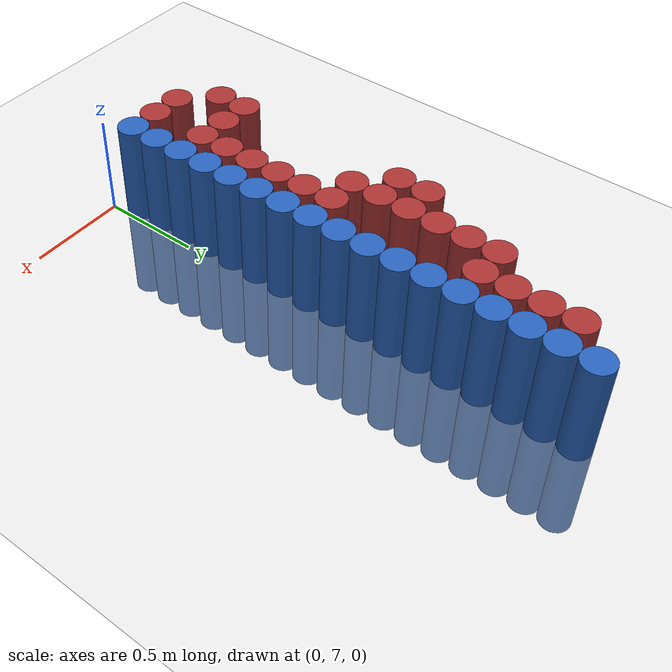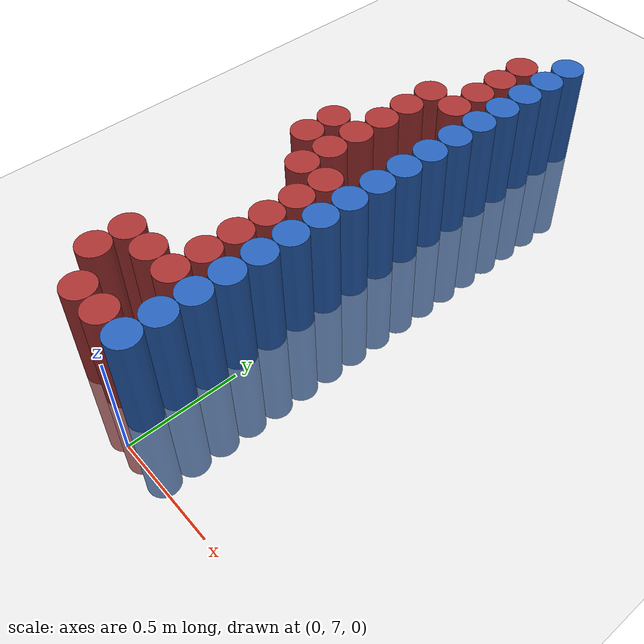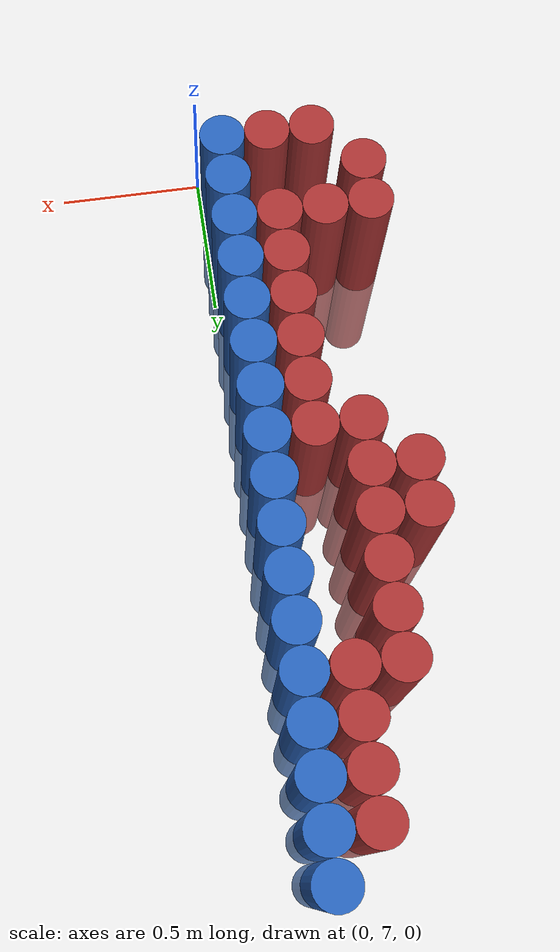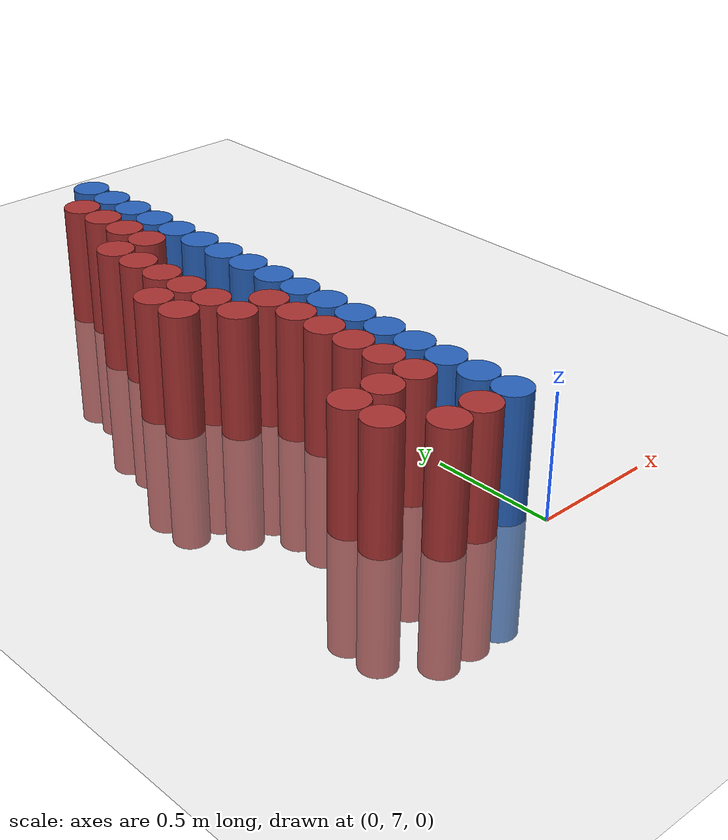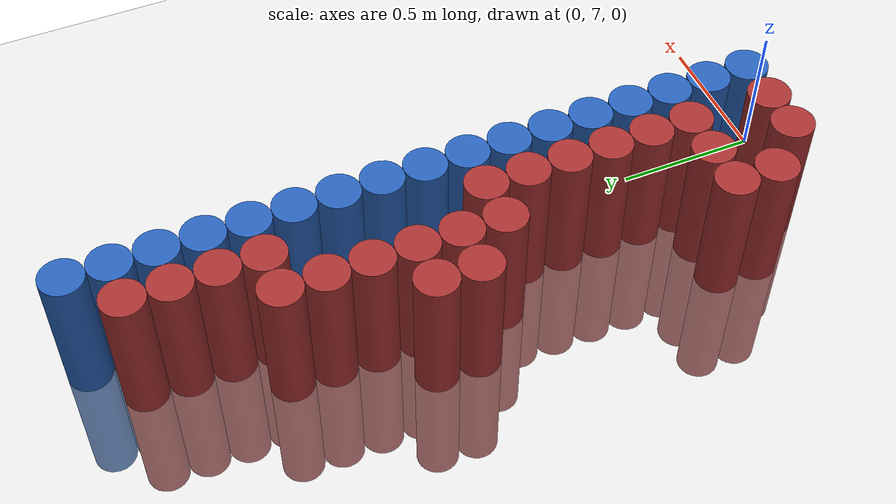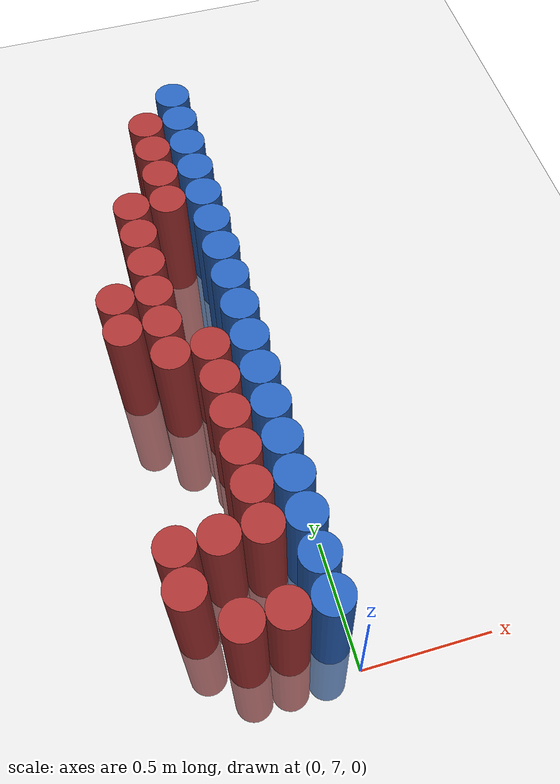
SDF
<sdf version="1.6">
 <world name="default">
  <model name="ground_plane">
   <static>1</static>
   <link name="link">
    <collision name="collision">
     <geometry><plane><normal>0 0 1</normal><size>100 100</size></plane></geometry>
     <surface><friction><ode><mu>100</mu><mu2>50</mu2></ode></friction></surface>
    </collision>
    <visual name="visual">
     <cast_shadows>0</cast_shadows>
     <geometry><plane><normal>0 0 1</normal><size>100 100</size></plane></geometry>
     <material>
      <script><uri>file://media/materials/scripts/gazebo.material</uri><name>Gazebo/Grey</name></script>
     </material>
    </visual>
   </link>
  </model>
  <model name="unit_cylinder_297">
   <static>1</static>
   <pose>-0.525000 7.275000 0.000000 0.000000 0.000000 0.000000</pose>
   <link name="link">
    <inertial>
     <mass>1</mass>
     <inertia><ixx>0.145833</ixx><ixy>0</ixy><ixz>0</ixz><iyy>0.145833</iyy><iyz>0</iyz><izz>0.125</izz></inertia>
    </inertial>
    <collision name="collision">
     <geometry><cylinder><radius>0.075000</radius><length>1</length></cylinder></geometry>
    </collision>
    <visual name="visual">
     <geometry><cylinder><radius>0.075000</radius><length>1</length></cylinder></geometry>
     <material>
      <ambient>0.648000 0.192000 0.192000 1</ambient>
      <diffuse>0.648000 0.192000 0.192000 1</diffuse>
     </material>
     <material>
      <script><name>Gazebo/Grey</name><uri>file://media/materials/scripts/gazebo.material</uri></script>
     </material>
    </visual>
    <sensor name="sensor_contact" type="contact"><contact><collision>collision</collision></contact></sensor>
   </link>
   <plugin filename="gz-sim-touchplugin-system" name="gz::sim::systems::TouchPlugin">
    <target>robot</target>
    <namespace>robot</namespace>
    <time>0.001</time>
    <enabled>true</enabled>
   </plugin>
  </model>
  <model name="unit_cylinder_298">
   <static>1</static>
   <pose>-0.525000 7.425000 0.000000 0.000000 0.000000 0.000000</pose>
   <link name="link">
    <inertial>
     <mass>1</mass>
     <inertia><ixx>0.145833</ixx><ixy>0</ixy><ixz>0</ixz><iyy>0.145833</iyy><iyz>0</iyz><izz>0.125</izz></inertia>
    </inertial>
    <collision name="collision">
     <geometry><cylinder><radius>0.075000</radius><length>1</length></cylinder></geometry>
    </collision>
    <visual name="visual">
     <geometry><cylinder><radius>0.075000</radius><length>1</length></cylinder></geometry>
     <material>
      <ambient>0.648000 0.192000 0.192000 1</ambient>
      <diffuse>0.648000 0.192000 0.192000 1</diffuse>
     </material>
     <material>
      <script><name>Gazebo/Grey</name><uri>file://media/materials/scripts/gazebo.material</uri></script>
     </material>
    </visual>
    <sensor name="sensor_contact" type="contact"><contact><collision>collision</collision></contact></sensor>
   </link>
   <plugin filename="gz-sim-touchplugin-system" name="gz::sim::systems::TouchPlugin">
    <target>robot</target>
    <namespace>robot</namespace>
    <time>0.001</time>
    <enabled>true</enabled>
   </plugin>
  </model>
  <model name="unit_cylinder_299">
   <static>1</static>
   <pose>-0.525000 8.325000 0.000000 0.000000 0.000000 0.000000</pose>
   <link name="link">
    <inertial>
     <mass>1</mass>
     <inertia><ixx>0.145833</ixx><ixy>0</ixy><ixz>0</ixz><iyy>0.145833</iyy><iyz>0</iyz><izz>0.125</izz></inertia>
    </inertial>
    <collision name="collision">
     <geometry><cylinder><radius>0.075000</radius><length>1</length></cylinder></geometry>
    </collision>
    <visual name="visual">
     <geometry><cylinder><radius>0.075000</radius><length>1</length></cylinder></geometry>
     <material>
      <ambient>0.648000 0.192000 0.192000 1</ambient>
      <diffuse>0.648000 0.192000 0.192000 1</diffuse>
     </material>
     <material>
      <script><name>Gazebo/Grey</name><uri>file://media/materials/scripts/gazebo.material</uri></script>
     </material>
    </visual>
    <sensor name="sensor_contact" type="contact"><contact><collision>collision</collision></contact></sensor>
   </link>
   <plugin filename="gz-sim-touchplugin-system" name="gz::sim::systems::TouchPlugin">
    <target>robot</target>
    <namespace>robot</namespace>
    <time>0.001</time>
    <enabled>true</enabled>
   </plugin>
  </model>
  <model name="unit_cylinder_300">
   <static>1</static>
   <pose>-0.525000 8.475000 0.000000 0.000000 0.000000 0.000000</pose>
   <link name="link">
    <inertial>
     <mass>1</mass>
     <inertia><ixx>0.145833</ixx><ixy>0</ixy><ixz>0</ixz><iyy>0.145833</iyy><iyz>0</iyz><izz>0.125</izz></inertia>
    </inertial>
    <collision name="collision">
     <geometry><cylinder><radius>0.075000</radius><length>1</length></cylinder></geometry>
    </collision>
    <visual name="visual">
     <geometry><cylinder><radius>0.075000</radius><length>1</length></cylinder></geometry>
     <material>
      <ambient>0.648000 0.192000 0.192000 1</ambient>
      <diffuse>0.648000 0.192000 0.192000 1</diffuse>
     </material>
     <material>
      <script><name>Gazebo/Grey</name><uri>file://media/materials/scripts/gazebo.material</uri></script>
     </material>
    </visual>
    <sensor name="sensor_contact" type="contact"><contact><collision>collision</collision></contact></sensor>
   </link>
   <plugin filename="gz-sim-touchplugin-system" name="gz::sim::systems::TouchPlugin">
    <target>robot</target>
    <namespace>robot</namespace>
    <time>0.001</time>
    <enabled>true</enabled>
   </plugin>
  </model>
  <model name="unit_cylinder_303">
   <static>1</static>
   <pose>-0.375000 7.125000 0.000000 0.000000 0.000000 0.000000</pose>
   <link name="link">
    <inertial>
     <mass>1</mass>
     <inertia><ixx>0.145833</ixx><ixy>0</ixy><ixz>0</ixz><iyy>0.145833</iyy><iyz>0</iyz><izz>0.125</izz></inertia>
    </inertial>
    <collision name="collision">
     <geometry><cylinder><radius>0.075000</radius><length>1</length></cylinder></geometry>
    </collision>
    <visual name="visual">
     <geometry><cylinder><radius>0.075000</radius><length>1</length></cylinder></geometry>
     <material>
      <ambient>0.648000 0.192000 0.192000 1</ambient>
      <diffuse>0.648000 0.192000 0.192000 1</diffuse>
     </material>
     <material>
      <script><name>Gazebo/Grey</name><uri>file://media/materials/scripts/gazebo.material</uri></script>
     </material>
    </visual>
    <sensor name="sensor_contact" type="contact"><contact><collision>collision</collision></contact></sensor>
   </link>
   <plugin filename="gz-sim-touchplugin-system" name="gz::sim::systems::TouchPlugin">
    <target>robot</target>
    <namespace>robot</namespace>
    <time>0.001</time>
    <enabled>true</enabled>
   </plugin>
  </model>
  <model name="unit_cylinder_304">
   <static>1</static>
   <pose>-0.375000 7.425000 0.000000 0.000000 0.000000 0.000000</pose>
   <link name="link">
    <inertial>
     <mass>1</mass>
     <inertia><ixx>0.145833</ixx><ixy>0</ixy><ixz>0</ixz><iyy>0.145833</iyy><iyz>0</iyz><izz>0.125</izz></inertia>
    </inertial>
    <collision name="collision">
     <geometry><cylinder><radius>0.075000</radius><length>1</length></cylinder></geometry>
    </collision>
    <visual name="visual">
     <geometry><cylinder><radius>0.075000</radius><length>1</length></cylinder></geometry>
     <material>
      <ambient>0.648000 0.192000 0.192000 1</ambient>
      <diffuse>0.648000 0.192000 0.192000 1</diffuse>
     </material>
     <material>
      <script><name>Gazebo/Grey</name><uri>file://media/materials/scripts/gazebo.material</uri></script>
     </material>
    </visual>
    <sensor name="sensor_contact" type="contact"><contact><collision>collision</collision></contact></sensor>
   </link>
   <plugin filename="gz-sim-touchplugin-system" name="gz::sim::systems::TouchPlugin">
    <target>robot</target>
    <namespace>robot</namespace>
    <time>0.001</time>
    <enabled>true</enabled>
   </plugin>
  </model>
  <model name="unit_cylinder_305">
   <static>1</static>
   <pose>-0.375000 8.175000 0.000000 0.000000 0.000000 0.000000</pose>
   <link name="link">
    <inertial>
     <mass>1</mass>
     <inertia><ixx>0.145833</ixx><ixy>0</ixy><ixz>0</ixz><iyy>0.145833</iyy><iyz>0</iyz><izz>0.125</izz></inertia>
    </inertial>
    <collision name="collision">
     <geometry><cylinder><radius>0.075000</radius><length>1</length></cylinder></geometry>
    </collision>
    <visual name="visual">
     <geometry><cylinder><radius>0.075000</radius><length>1</length></cylinder></geometry>
     <material>
      <ambient>0.648000 0.192000 0.192000 1</ambient>
      <diffuse>0.648000 0.192000 0.192000 1</diffuse>
     </material>
     <material>
      <script><name>Gazebo/Grey</name><uri>file://media/materials/scripts/gazebo.material</uri></script>
     </material>
    </visual>
    <sensor name="sensor_contact" type="contact"><contact><collision>collision</collision></contact></sensor>
   </link>
   <plugin filename="gz-sim-touchplugin-system" name="gz::sim::systems::TouchPlugin">
    <target>robot</target>
    <namespace>robot</namespace>
    <time>0.001</time>
    <enabled>true</enabled>
   </plugin>
  </model>
  <model name="unit_cylinder_306">
   <static>1</static>
   <pose>-0.375000 8.325000 0.000000 0.000000 0.000000 0.000000</pose>
   <link name="link">
    <inertial>
     <mass>1</mass>
     <inertia><ixx>0.145833</ixx><ixy>0</ixy><ixz>0</ixz><iyy>0.145833</iyy><iyz>0</iyz><izz>0.125</izz></inertia>
    </inertial>
    <collision name="collision">
     <geometry><cylinder><radius>0.075000</radius><length>1</length></cylinder></geometry>
    </collision>
    <visual name="visual">
     <geometry><cylinder><radius>0.075000</radius><length>1</length></cylinder></geometry>
     <material>
      <ambient>0.648000 0.192000 0.192000 1</ambient>
      <diffuse>0.648000 0.192000 0.192000 1</diffuse>
     </material>
     <material>
      <script><name>Gazebo/Grey</name><uri>file://media/materials/scripts/gazebo.material</uri></script>
     </material>
    </visual>
    <sensor name="sensor_contact" type="contact"><contact><collision>collision</collision></contact></sensor>
   </link>
   <plugin filename="gz-sim-touchplugin-system" name="gz::sim::systems::TouchPlugin">
    <target>robot</target>
    <namespace>robot</namespace>
    <time>0.001</time>
    <enabled>true</enabled>
   </plugin>
  </model>
  <model name="unit_cylinder_307">
   <static>1</static>
   <pose>-0.375000 8.475000 0.000000 0.000000 0.000000 0.000000</pose>
   <link name="link">
    <inertial>
     <mass>1</mass>
     <inertia><ixx>0.145833</ixx><ixy>0</ixy><ixz>0</ixz><iyy>0.145833</iyy><iyz>0</iyz><izz>0.125</izz></inertia>
    </inertial>
    <collision name="collision">
     <geometry><cylinder><radius>0.075000</radius><length>1</length></cylinder></geometry>
    </collision>
    <visual name="visual">
     <geometry><cylinder><radius>0.075000</radius><length>1</length></cylinder></geometry>
     <material>
      <ambient>0.648000 0.192000 0.192000 1</ambient>
      <diffuse>0.648000 0.192000 0.192000 1</diffuse>
     </material>
     <material>
      <script><name>Gazebo/Grey</name><uri>file://media/materials/scripts/gazebo.material</uri></script>
     </material>
    </visual>
    <sensor name="sensor_contact" type="contact"><contact><collision>collision</collision></contact></sensor>
   </link>
   <plugin filename="gz-sim-touchplugin-system" name="gz::sim::systems::TouchPlugin">
    <target>robot</target>
    <namespace>robot</namespace>
    <time>0.001</time>
    <enabled>true</enabled>
   </plugin>
  </model>
  <model name="unit_cylinder_308">
   <static>1</static>
   <pose>-0.375000 8.625000 0.000000 0.000000 0.000000 0.000000</pose>
   <link name="link">
    <inertial>
     <mass>1</mass>
     <inertia><ixx>0.145833</ixx><ixy>0</ixy><ixz>0</ixz><iyy>0.145833</iyy><iyz>0</iyz><izz>0.125</izz></inertia>
    </inertial>
    <collision name="collision">
     <geometry><cylinder><radius>0.075000</radius><length>1</length></cylinder></geometry>
    </collision>
    <visual name="visual">
     <geometry><cylinder><radius>0.075000</radius><length>1</length></cylinder></geometry>
     <material>
      <ambient>0.648000 0.192000 0.192000 1</ambient>
      <diffuse>0.648000 0.192000 0.192000 1</diffuse>
     </material>
     <material>
      <script><name>Gazebo/Grey</name><uri>file://media/materials/scripts/gazebo.material</uri></script>
     </material>
    </visual>
    <sensor name="sensor_contact" type="contact"><contact><collision>collision</collision></contact></sensor>
   </link>
   <plugin filename="gz-sim-touchplugin-system" name="gz::sim::systems::TouchPlugin">
    <target>robot</target>
    <namespace>robot</namespace>
    <time>0.001</time>
    <enabled>true</enabled>
   </plugin>
  </model>
  <model name="unit_cylinder_309">
   <static>1</static>
   <pose>-0.375000 8.775000 0.000000 0.000000 0.000000 0.000000</pose>
   <link name="link">
    <inertial>
     <mass>1</mass>
     <inertia><ixx>0.145833</ixx><ixy>0</ixy><ixz>0</ixz><iyy>0.145833</iyy><iyz>0</iyz><izz>0.125</izz></inertia>
    </inertial>
    <collision name="collision">
     <geometry><cylinder><radius>0.075000</radius><length>1</length></cylinder></geometry>
    </collision>
    <visual name="visual">
     <geometry><cylinder><radius>0.075000</radius><length>1</length></cylinder></geometry>
     <material>
      <ambient>0.648000 0.192000 0.192000 1</ambient>
      <diffuse>0.648000 0.192000 0.192000 1</diffuse>
     </material>
     <material>
      <script><name>Gazebo/Grey</name><uri>file://media/materials/scripts/gazebo.material</uri></script>
     </material>
    </visual>
    <sensor name="sensor_contact" type="contact"><contact><collision>collision</collision></contact></sensor>
   </link>
   <plugin filename="gz-sim-touchplugin-system" name="gz::sim::systems::TouchPlugin">
    <target>robot</target>
    <namespace>robot</namespace>
    <time>0.001</time>
    <enabled>true</enabled>
   </plugin>
  </model>
  <model name="unit_cylinder_310">
   <static>1</static>
   <pose>-0.375000 8.925000 0.000000 0.000000 0.000000 0.000000</pose>
   <link name="link">
    <inertial>
     <mass>1</mass>
     <inertia><ixx>0.145833</ixx><ixy>0</ixy><ixz>0</ixz><iyy>0.145833</iyy><iyz>0</iyz><izz>0.125</izz></inertia>
    </inertial>
    <collision name="collision">
     <geometry><cylinder><radius>0.075000</radius><length>1</length></cylinder></geometry>
    </collision>
    <visual name="visual">
     <geometry><cylinder><radius>0.075000</radius><length>1</length></cylinder></geometry>
     <material>
      <ambient>0.648000 0.192000 0.192000 1</ambient>
      <diffuse>0.648000 0.192000 0.192000 1</diffuse>
     </material>
     <material>
      <script><name>Gazebo/Grey</name><uri>file://media/materials/scripts/gazebo.material</uri></script>
     </material>
    </visual>
    <sensor name="sensor_contact" type="contact"><contact><collision>collision</collision></contact></sensor>
   </link>
   <plugin filename="gz-sim-touchplugin-system" name="gz::sim::systems::TouchPlugin">
    <target>robot</target>
    <namespace>robot</namespace>
    <time>0.001</time>
    <enabled>true</enabled>
   </plugin>
  </model>
  <model name="unit_cylinder_316">
   <static>1</static>
   <pose>-0.225000 7.125000 0.000000 0.000000 0.000000 0.000000</pose>
   <link name="link">
    <inertial>
     <mass>1</mass>
     <inertia><ixx>0.145833</ixx><ixy>0</ixy><ixz>0</ixz><iyy>0.145833</iyy><iyz>0</iyz><izz>0.125</izz></inertia>
    </inertial>
    <collision name="collision">
     <geometry><cylinder><radius>0.075000</radius><length>1</length></cylinder></geometry>
    </collision>
    <visual name="visual">
     <geometry><cylinder><radius>0.075000</radius><length>1</length></cylinder></geometry>
     <material>
      <ambient>0.648000 0.192000 0.192000 1</ambient>
      <diffuse>0.648000 0.192000 0.192000 1</diffuse>
     </material>
     <material>
      <script><name>Gazebo/Grey</name><uri>file://media/materials/scripts/gazebo.material</uri></script>
     </material>
    </visual>
    <sensor name="sensor_contact" type="contact"><contact><collision>collision</collision></contact></sensor>
   </link>
   <plugin filename="gz-sim-touchplugin-system" name="gz::sim::systems::TouchPlugin">
    <target>robot</target>
    <namespace>robot</namespace>
    <time>0.001</time>
    <enabled>true</enabled>
   </plugin>
  </model>
  <model name="unit_cylinder_317">
   <static>1</static>
   <pose>-0.225000 7.425000 0.000000 0.000000 0.000000 0.000000</pose>
   <link name="link">
    <inertial>
     <mass>1</mass>
     <inertia><ixx>0.145833</ixx><ixy>0</ixy><ixz>0</ixz><iyy>0.145833</iyy><iyz>0</iyz><izz>0.125</izz></inertia>
    </inertial>
    <collision name="collision">
     <geometry><cylinder><radius>0.075000</radius><length>1</length></cylinder></geometry>
    </collision>
    <visual name="visual">
     <geometry><cylinder><radius>0.075000</radius><length>1</length></cylinder></geometry>
     <material>
      <ambient>0.648000 0.192000 0.192000 1</ambient>
      <diffuse>0.648000 0.192000 0.192000 1</diffuse>
     </material>
     <material>
      <script><name>Gazebo/Grey</name><uri>file://media/materials/scripts/gazebo.material</uri></script>
     </material>
    </visual>
    <sensor name="sensor_contact" type="contact"><contact><collision>collision</collision></contact></sensor>
   </link>
   <plugin filename="gz-sim-touchplugin-system" name="gz::sim::systems::TouchPlugin">
    <target>robot</target>
    <namespace>robot</namespace>
    <time>0.001</time>
    <enabled>true</enabled>
   </plugin>
  </model>
  <model name="unit_cylinder_318">
   <static>1</static>
   <pose>-0.225000 7.575000 0.000000 0.000000 0.000000 0.000000</pose>
   <link name="link">
    <inertial>
     <mass>1</mass>
     <inertia><ixx>0.145833</ixx><ixy>0</ixy><ixz>0</ixz><iyy>0.145833</iyy><iyz>0</iyz><izz>0.125</izz></inertia>
    </inertial>
    <collision name="collision">
     <geometry><cylinder><radius>0.075000</radius><length>1</length></cylinder></geometry>
    </collision>
    <visual name="visual">
     <geometry><cylinder><radius>0.075000</radius><length>1</length></cylinder></geometry>
     <material>
      <ambient>0.648000 0.192000 0.192000 1</ambient>
      <diffuse>0.648000 0.192000 0.192000 1</diffuse>
     </material>
     <material>
      <script><name>Gazebo/Grey</name><uri>file://media/materials/scripts/gazebo.material</uri></script>
     </material>
    </visual>
    <sensor name="sensor_contact" type="contact"><contact><collision>collision</collision></contact></sensor>
   </link>
   <plugin filename="gz-sim-touchplugin-system" name="gz::sim::systems::TouchPlugin">
    <target>robot</target>
    <namespace>robot</namespace>
    <time>0.001</time>
    <enabled>true</enabled>
   </plugin>
  </model>
  <model name="unit_cylinder_319">
   <static>1</static>
   <pose>-0.225000 7.725000 0.000000 0.000000 0.000000 0.000000</pose>
   <link name="link">
    <inertial>
     <mass>1</mass>
     <inertia><ixx>0.145833</ixx><ixy>0</ixy><ixz>0</ixz><iyy>0.145833</iyy><iyz>0</iyz><izz>0.125</izz></inertia>
    </inertial>
    <collision name="collision">
     <geometry><cylinder><radius>0.075000</radius><length>1</length></cylinder></geometry>
    </collision>
    <visual name="visual">
     <geometry><cylinder><radius>0.075000</radius><length>1</length></cylinder></geometry>
     <material>
      <ambient>0.648000 0.192000 0.192000 1</ambient>
      <diffuse>0.648000 0.192000 0.192000 1</diffuse>
     </material>
     <material>
      <script><name>Gazebo/Grey</name><uri>file://media/materials/scripts/gazebo.material</uri></script>
     </material>
    </visual>
    <sensor name="sensor_contact" type="contact"><contact><collision>collision</collision></contact></sensor>
   </link>
   <plugin filename="gz-sim-touchplugin-system" name="gz::sim::systems::TouchPlugin">
    <target>robot</target>
    <namespace>robot</namespace>
    <time>0.001</time>
    <enabled>true</enabled>
   </plugin>
  </model>
  <model name="unit_cylinder_320">
   <static>1</static>
   <pose>-0.225000 7.875000 0.000000 0.000000 0.000000 0.000000</pose>
   <link name="link">
    <inertial>
     <mass>1</mass>
     <inertia><ixx>0.145833</ixx><ixy>0</ixy><ixz>0</ixz><iyy>0.145833</iyy><iyz>0</iyz><izz>0.125</izz></inertia>
    </inertial>
    <collision name="collision">
     <geometry><cylinder><radius>0.075000</radius><length>1</length></cylinder></geometry>
    </collision>
    <visual name="visual">
     <geometry><cylinder><radius>0.075000</radius><length>1</length></cylinder></geometry>
     <material>
      <ambient>0.648000 0.192000 0.192000 1</ambient>
      <diffuse>0.648000 0.192000 0.192000 1</diffuse>
     </material>
     <material>
      <script><name>Gazebo/Grey</name><uri>file://media/materials/scripts/gazebo.material</uri></script>
     </material>
    </visual>
    <sensor name="sensor_contact" type="contact"><contact><collision>collision</collision></contact></sensor>
   </link>
   <plugin filename="gz-sim-touchplugin-system" name="gz::sim::systems::TouchPlugin">
    <target>robot</target>
    <namespace>robot</namespace>
    <time>0.001</time>
    <enabled>true</enabled>
   </plugin>
  </model>
  <model name="unit_cylinder_321">
   <static>1</static>
   <pose>-0.225000 8.025000 0.000000 0.000000 0.000000 0.000000</pose>
   <link name="link">
    <inertial>
     <mass>1</mass>
     <inertia><ixx>0.145833</ixx><ixy>0</ixy><ixz>0</ixz><iyy>0.145833</iyy><iyz>0</iyz><izz>0.125</izz></inertia>
    </inertial>
    <collision name="collision">
     <geometry><cylinder><radius>0.075000</radius><length>1</length></cylinder></geometry>
    </collision>
    <visual name="visual">
     <geometry><cylinder><radius>0.075000</radius><length>1</length></cylinder></geometry>
     <material>
      <ambient>0.648000 0.192000 0.192000 1</ambient>
      <diffuse>0.648000 0.192000 0.192000 1</diffuse>
     </material>
     <material>
      <script><name>Gazebo/Grey</name><uri>file://media/materials/scripts/gazebo.material</uri></script>
     </material>
    </visual>
    <sensor name="sensor_contact" type="contact"><contact><collision>collision</collision></contact></sensor>
   </link>
   <plugin filename="gz-sim-touchplugin-system" name="gz::sim::systems::TouchPlugin">
    <target>robot</target>
    <namespace>robot</namespace>
    <time>0.001</time>
    <enabled>true</enabled>
   </plugin>
  </model>
  <model name="unit_cylinder_322">
   <static>1</static>
   <pose>-0.225000 8.175000 0.000000 0.000000 0.000000 0.000000</pose>
   <link name="link">
    <inertial>
     <mass>1</mass>
     <inertia><ixx>0.145833</ixx><ixy>0</ixy><ixz>0</ixz><iyy>0.145833</iyy><iyz>0</iyz><izz>0.125</izz></inertia>
    </inertial>
    <collision name="collision">
     <geometry><cylinder><radius>0.075000</radius><length>1</length></cylinder></geometry>
    </collision>
    <visual name="visual">
     <geometry><cylinder><radius>0.075000</radius><length>1</length></cylinder></geometry>
     <material>
      <ambient>0.648000 0.192000 0.192000 1</ambient>
      <diffuse>0.648000 0.192000 0.192000 1</diffuse>
     </material>
     <material>
      <script><name>Gazebo/Grey</name><uri>file://media/materials/scripts/gazebo.material</uri></script>
     </material>
    </visual>
    <sensor name="sensor_contact" type="contact"><contact><collision>collision</collision></contact></sensor>
   </link>
   <plugin filename="gz-sim-touchplugin-system" name="gz::sim::systems::TouchPlugin">
    <target>robot</target>
    <namespace>robot</namespace>
    <time>0.001</time>
    <enabled>true</enabled>
   </plugin>
  </model>
  <model name="unit_cylinder_323">
   <static>1</static>
   <pose>-0.225000 8.925000 0.000000 0.000000 0.000000 0.000000</pose>
   <link name="link">
    <inertial>
     <mass>1</mass>
     <inertia><ixx>0.145833</ixx><ixy>0</ixy><ixz>0</ixz><iyy>0.145833</iyy><iyz>0</iyz><izz>0.125</izz></inertia>
    </inertial>
    <collision name="collision">
     <geometry><cylinder><radius>0.075000</radius><length>1</length></cylinder></geometry>
    </collision>
    <visual name="visual">
     <geometry><cylinder><radius>0.075000</radius><length>1</length></cylinder></geometry>
     <material>
      <ambient>0.648000 0.192000 0.192000 1</ambient>
      <diffuse>0.648000 0.192000 0.192000 1</diffuse>
     </material>
     <material>
      <script><name>Gazebo/Grey</name><uri>file://media/materials/scripts/gazebo.material</uri></script>
     </material>
    </visual>
    <sensor name="sensor_contact" type="contact"><contact><collision>collision</collision></contact></sensor>
   </link>
   <plugin filename="gz-sim-touchplugin-system" name="gz::sim::systems::TouchPlugin">
    <target>robot</target>
    <namespace>robot</namespace>
    <time>0.001</time>
    <enabled>true</enabled>
   </plugin>
  </model>
  <model name="unit_cylinder_324">
   <static>1</static>
   <pose>-0.225000 9.075000 0.000000 0.000000 0.000000 0.000000</pose>
   <link name="link">
    <inertial>
     <mass>1</mass>
     <inertia><ixx>0.145833</ixx><ixy>0</ixy><ixz>0</ixz><iyy>0.145833</iyy><iyz>0</iyz><izz>0.125</izz></inertia>
    </inertial>
    <collision name="collision">
     <geometry><cylinder><radius>0.075000</radius><length>1</length></cylinder></geometry>
    </collision>
    <visual name="visual">
     <geometry><cylinder><radius>0.075000</radius><length>1</length></cylinder></geometry>
     <material>
      <ambient>0.648000 0.192000 0.192000 1</ambient>
      <diffuse>0.648000 0.192000 0.192000 1</diffuse>
     </material>
     <material>
      <script><name>Gazebo/Grey</name><uri>file://media/materials/scripts/gazebo.material</uri></script>
     </material>
    </visual>
    <sensor name="sensor_contact" type="contact"><contact><collision>collision</collision></contact></sensor>
   </link>
   <plugin filename="gz-sim-touchplugin-system" name="gz::sim::systems::TouchPlugin">
    <target>robot</target>
    <namespace>robot</namespace>
    <time>0.001</time>
    <enabled>true</enabled>
   </plugin>
  </model>
  <model name="unit_cylinder_325">
   <static>1</static>
   <pose>-0.225000 9.225000 0.000000 0.000000 0.000000 0.000000</pose>
   <link name="link">
    <inertial>
     <mass>1</mass>
     <inertia><ixx>0.145833</ixx><ixy>0</ixy><ixz>0</ixz><iyy>0.145833</iyy><iyz>0</iyz><izz>0.125</izz></inertia>
    </inertial>
    <collision name="collision">
     <geometry><cylinder><radius>0.075000</radius><length>1</length></cylinder></geometry>
    </collision>
    <visual name="visual">
     <geometry><cylinder><radius>0.075000</radius><length>1</length></cylinder></geometry>
     <material>
      <ambient>0.648000 0.192000 0.192000 1</ambient>
      <diffuse>0.648000 0.192000 0.192000 1</diffuse>
     </material>
     <material>
      <script><name>Gazebo/Grey</name><uri>file://media/materials/scripts/gazebo.material</uri></script>
     </material>
    </visual>
    <sensor name="sensor_contact" type="contact"><contact><collision>collision</collision></contact></sensor>
   </link>
   <plugin filename="gz-sim-touchplugin-system" name="gz::sim::systems::TouchPlugin">
    <target>robot</target>
    <namespace>robot</namespace>
    <time>0.001</time>
    <enabled>true</enabled>
   </plugin>
  </model>
  <model name="unit_cylinder_326">
   <static>1</static>
   <pose>-0.225000 9.375000 0.000000 0.000000 0.000000 0.000000</pose>
   <link name="link">
    <inertial>
     <mass>1</mass>
     <inertia><ixx>0.145833</ixx><ixy>0</ixy><ixz>0</ixz><iyy>0.145833</iyy><iyz>0</iyz><izz>0.125</izz></inertia>
    </inertial>
    <collision name="collision">
     <geometry><cylinder><radius>0.075000</radius><length>1</length></cylinder></geometry>
    </collision>
    <visual name="visual">
     <geometry><cylinder><radius>0.075000</radius><length>1</length></cylinder></geometry>
     <material>
      <ambient>0.648000 0.192000 0.192000 1</ambient>
      <diffuse>0.648000 0.192000 0.192000 1</diffuse>
     </material>
     <material>
      <script><name>Gazebo/Grey</name><uri>file://media/materials/scripts/gazebo.material</uri></script>
     </material>
    </visual>
    <sensor name="sensor_contact" type="contact"><contact><collision>collision</collision></contact></sensor>
   </link>
   <plugin filename="gz-sim-touchplugin-system" name="gz::sim::systems::TouchPlugin">
    <target>robot</target>
    <namespace>robot</namespace>
    <time>0.001</time>
    <enabled>true</enabled>
   </plugin>
  </model>
  <model name="unit_cylinder_340">
   <static>1</static>
   <pose>-0.075000 7.125000 0.000000 0.000000 0.000000 0.000000</pose>
   <link name="link">
    <inertial>
     <mass>1</mass>
     <inertia><ixx>0.145833</ixx><ixy>0</ixy><ixz>0</ixz><iyy>0.145833</iyy><iyz>0</iyz><izz>0.125</izz></inertia>
    </inertial>
    <collision name="collision">
     <geometry><cylinder><radius>0.075000</radius><length>1</length></cylinder></geometry>
    </collision>
    <visual name="visual">
     <geometry><cylinder><radius>0.075000</radius><length>1</length></cylinder></geometry>
     <material>
      <ambient>0.152000 0.379000 0.720000 1</ambient>
      <diffuse>0.152000 0.379000 0.720000 1</diffuse>
     </material>
     <material>
      <script><name>Gazebo/Grey</name><uri>file://media/materials/scripts/gazebo.material</uri></script>
     </material>
    </visual>
    <sensor name="sensor_contact" type="contact"><contact><collision>collision</collision></contact></sensor>
   </link>
   <plugin filename="gz-sim-touchplugin-system" name="gz::sim::systems::TouchPlugin">
    <target>robot</target>
    <namespace>robot</namespace>
    <time>0.001</time>
    <enabled>true</enabled>
   </plugin>
  </model>
  <model name="unit_cylinder_341">
   <static>1</static>
   <pose>-0.075000 7.275000 0.000000 0.000000 0.000000 0.000000</pose>
   <link name="link">
    <inertial>
     <mass>1</mass>
     <inertia><ixx>0.145833</ixx><ixy>0</ixy><ixz>0</ixz><iyy>0.145833</iyy><iyz>0</iyz><izz>0.125</izz></inertia>
    </inertial>
    <collision name="collision">
     <geometry><cylinder><radius>0.075000</radius><length>1</length></cylinder></geometry>
    </collision>
    <visual name="visual">
     <geometry><cylinder><radius>0.075000</radius><length>1</length></cylinder></geometry>
     <material>
      <ambient>0.152000 0.379000 0.720000 1</ambient>
      <diffuse>0.152000 0.379000 0.720000 1</diffuse>
     </material>
     <material>
      <script><name>Gazebo/Grey</name><uri>file://media/materials/scripts/gazebo.material</uri></script>
     </material>
    </visual>
    <sensor name="sensor_contact" type="contact"><contact><collision>collision</collision></contact></sensor>
   </link>
   <plugin filename="gz-sim-touchplugin-system" name="gz::sim::systems::TouchPlugin">
    <target>robot</target>
    <namespace>robot</namespace>
    <time>0.001</time>
    <enabled>true</enabled>
   </plugin>
  </model>
  <model name="unit_cylinder_342">
   <static>1</static>
   <pose>-0.075000 7.425000 0.000000 0.000000 0.000000 0.000000</pose>
   <link name="link">
    <inertial>
     <mass>1</mass>
     <inertia><ixx>0.145833</ixx><ixy>0</ixy><ixz>0</ixz><iyy>0.145833</iyy><iyz>0</iyz><izz>0.125</izz></inertia>
    </inertial>
    <collision name="collision">
     <geometry><cylinder><radius>0.075000</radius><length>1</length></cylinder></geometry>
    </collision>
    <visual name="visual">
     <geometry><cylinder><radius>0.075000</radius><length>1</length></cylinder></geometry>
     <material>
      <ambient>0.152000 0.379000 0.720000 1</ambient>
      <diffuse>0.152000 0.379000 0.720000 1</diffuse>
     </material>
     <material>
      <script><name>Gazebo/Grey</name><uri>file://media/materials/scripts/gazebo.material</uri></script>
     </material>
    </visual>
    <sensor name="sensor_contact" type="contact"><contact><collision>collision</collision></contact></sensor>
   </link>
   <plugin filename="gz-sim-touchplugin-system" name="gz::sim::systems::TouchPlugin">
    <target>robot</target>
    <namespace>robot</namespace>
    <time>0.001</time>
    <enabled>true</enabled>
   </plugin>
  </model>
  <model name="unit_cylinder_343">
   <static>1</static>
   <pose>-0.075000 7.575000 0.000000 0.000000 0.000000 0.000000</pose>
   <link name="link">
    <inertial>
     <mass>1</mass>
     <inertia><ixx>0.145833</ixx><ixy>0</ixy><ixz>0</ixz><iyy>0.145833</iyy><iyz>0</iyz><izz>0.125</izz></inertia>
    </inertial>
    <collision name="collision">
     <geometry><cylinder><radius>0.075000</radius><length>1</length></cylinder></geometry>
    </collision>
    <visual name="visual">
     <geometry><cylinder><radius>0.075000</radius><length>1</length></cylinder></geometry>
     <material>
      <ambient>0.152000 0.379000 0.720000 1</ambient>
      <diffuse>0.152000 0.379000 0.720000 1</diffuse>
     </material>
     <material>
      <script><name>Gazebo/Grey</name><uri>file://media/materials/scripts/gazebo.material</uri></script>
     </material>
    </visual>
    <sensor name="sensor_contact" type="contact"><contact><collision>collision</collision></contact></sensor>
   </link>
   <plugin filename="gz-sim-touchplugin-system" name="gz::sim::systems::TouchPlugin">
    <target>robot</target>
    <namespace>robot</namespace>
    <time>0.001</time>
    <enabled>true</enabled>
   </plugin>
  </model>
  <model name="unit_cylinder_344">
   <static>1</static>
   <pose>-0.075000 7.725000 0.000000 0.000000 0.000000 0.000000</pose>
   <link name="link">
    <inertial>
     <mass>1</mass>
     <inertia><ixx>0.145833</ixx><ixy>0</ixy><ixz>0</ixz><iyy>0.145833</iyy><iyz>0</iyz><izz>0.125</izz></inertia>
    </inertial>
    <collision name="collision">
     <geometry><cylinder><radius>0.075000</radius><length>1</length></cylinder></geometry>
    </collision>
    <visual name="visual">
     <geometry><cylinder><radius>0.075000</radius><length>1</length></cylinder></geometry>
     <material>
      <ambient>0.152000 0.379000 0.720000 1</ambient>
      <diffuse>0.152000 0.379000 0.720000 1</diffuse>
     </material>
     <material>
      <script><name>Gazebo/Grey</name><uri>file://media/materials/scripts/gazebo.material</uri></script>
     </material>
    </visual>
    <sensor name="sensor_contact" type="contact"><contact><collision>collision</collision></contact></sensor>
   </link>
   <plugin filename="gz-sim-touchplugin-system" name="gz::sim::systems::TouchPlugin">
    <target>robot</target>
    <namespace>robot</namespace>
    <time>0.001</time>
    <enabled>true</enabled>
   </plugin>
  </model>
  <model name="unit_cylinder_345">
   <static>1</static>
   <pose>-0.075000 7.875000 0.000000 0.000000 0.000000 0.000000</pose>
   <link name="link">
    <inertial>
     <mass>1</mass>
     <inertia><ixx>0.145833</ixx><ixy>0</ixy><ixz>0</ixz><iyy>0.145833</iyy><iyz>0</iyz><izz>0.125</izz></inertia>
    </inertial>
    <collision name="collision">
     <geometry><cylinder><radius>0.075000</radius><length>1</length></cylinder></geometry>
    </collision>
    <visual name="visual">
     <geometry><cylinder><radius>0.075000</radius><length>1</length></cylinder></geometry>
     <material>
      <ambient>0.152000 0.379000 0.720000 1</ambient>
      <diffuse>0.152000 0.379000 0.720000 1</diffuse>
     </material>
     <material>
      <script><name>Gazebo/Grey</name><uri>file://media/materials/scripts/gazebo.material</uri></script>
     </material>
    </visual>
    <sensor name="sensor_contact" type="contact"><contact><collision>collision</collision></contact></sensor>
   </link>
   <plugin filename="gz-sim-touchplugin-system" name="gz::sim::systems::TouchPlugin">
    <target>robot</target>
    <namespace>robot</namespace>
    <time>0.001</time>
    <enabled>true</enabled>
   </plugin>
  </model>
  <model name="unit_cylinder_346">
   <static>1</static>
   <pose>-0.075000 8.025000 0.000000 0.000000 0.000000 0.000000</pose>
   <link name="link">
    <inertial>
     <mass>1</mass>
     <inertia><ixx>0.145833</ixx><ixy>0</ixy><ixz>0</ixz><iyy>0.145833</iyy><iyz>0</iyz><izz>0.125</izz></inertia>
    </inertial>
    <collision name="collision">
     <geometry><cylinder><radius>0.075000</radius><length>1</length></cylinder></geometry>
    </collision>
    <visual name="visual">
     <geometry><cylinder><radius>0.075000</radius><length>1</length></cylinder></geometry>
     <material>
      <ambient>0.152000 0.379000 0.720000 1</ambient>
      <diffuse>0.152000 0.379000 0.720000 1</diffuse>
     </material>
     <material>
      <script><name>Gazebo/Grey</name><uri>file://media/materials/scripts/gazebo.material</uri></script>
     </material>
    </visual>
    <sensor name="sensor_contact" type="contact"><contact><collision>collision</collision></contact></sensor>
   </link>
   <plugin filename="gz-sim-touchplugin-system" name="gz::sim::systems::TouchPlugin">
    <target>robot</target>
    <namespace>robot</namespace>
    <time>0.001</time>
    <enabled>true</enabled>
   </plugin>
  </model>
  <model name="unit_cylinder_347">
   <static>1</static>
   <pose>-0.075000 8.175000 0.000000 0.000000 0.000000 0.000000</pose>
   <link name="link">
    <inertial>
     <mass>1</mass>
     <inertia><ixx>0.145833</ixx><ixy>0</ixy><ixz>0</ixz><iyy>0.145833</iyy><iyz>0</iyz><izz>0.125</izz></inertia>
    </inertial>
    <collision name="collision">
     <geometry><cylinder><radius>0.075000</radius><length>1</length></cylinder></geometry>
    </collision>
    <visual name="visual">
     <geometry><cylinder><radius>0.075000</radius><length>1</length></cylinder></geometry>
     <material>
      <ambient>0.152000 0.379000 0.720000 1</ambient>
      <diffuse>0.152000 0.379000 0.720000 1</diffuse>
     </material>
     <material>
      <script><name>Gazebo/Grey</name><uri>file://media/materials/scripts/gazebo.material</uri></script>
     </material>
    </visual>
    <sensor name="sensor_contact" type="contact"><contact><collision>collision</collision></contact></sensor>
   </link>
   <plugin filename="gz-sim-touchplugin-system" name="gz::sim::systems::TouchPlugin">
    <target>robot</target>
    <namespace>robot</namespace>
    <time>0.001</time>
    <enabled>true</enabled>
   </plugin>
  </model>
  <model name="unit_cylinder_348">
   <static>1</static>
   <pose>-0.075000 8.325000 0.000000 0.000000 0.000000 0.000000</pose>
   <link name="link">
    <inertial>
     <mass>1</mass>
     <inertia><ixx>0.145833</ixx><ixy>0</ixy><ixz>0</ixz><iyy>0.145833</iyy><iyz>0</iyz><izz>0.125</izz></inertia>
    </inertial>
    <collision name="collision">
     <geometry><cylinder><radius>0.075000</radius><length>1</length></cylinder></geometry>
    </collision>
    <visual name="visual">
     <geometry><cylinder><radius>0.075000</radius><length>1</length></cylinder></geometry>
     <material>
      <ambient>0.152000 0.379000 0.720000 1</ambient>
      <diffuse>0.152000 0.379000 0.720000 1</diffuse>
     </material>
     <material>
      <script><name>Gazebo/Grey</name><uri>file://media/materials/scripts/gazebo.material</uri></script>
     </material>
    </visual>
    <sensor name="sensor_contact" type="contact"><contact><collision>collision</collision></contact></sensor>
   </link>
   <plugin filename="gz-sim-touchplugin-system" name="gz::sim::systems::TouchPlugin">
    <target>robot</target>
    <namespace>robot</namespace>
    <time>0.001</time>
    <enabled>true</enabled>
   </plugin>
  </model>
  <model name="unit_cylinder_349">
   <static>1</static>
   <pose>-0.075000 8.475000 0.000000 0.000000 0.000000 0.000000</pose>
   <link name="link">
    <inertial>
     <mass>1</mass>
     <inertia><ixx>0.145833</ixx><ixy>0</ixy><ixz>0</ixz><iyy>0.145833</iyy><iyz>0</iyz><izz>0.125</izz></inertia>
    </inertial>
    <collision name="collision">
     <geometry><cylinder><radius>0.075000</radius><length>1</length></cylinder></geometry>
    </collision>
    <visual name="visual">
     <geometry><cylinder><radius>0.075000</radius><length>1</length></cylinder></geometry>
     <material>
      <ambient>0.152000 0.379000 0.720000 1</ambient>
      <diffuse>0.152000 0.379000 0.720000 1</diffuse>
     </material>
     <material>
      <script><name>Gazebo/Grey</name><uri>file://media/materials/scripts/gazebo.material</uri></script>
     </material>
    </visual>
    <sensor name="sensor_contact" type="contact"><contact><collision>collision</collision></contact></sensor>
   </link>
   <plugin filename="gz-sim-touchplugin-system" name="gz::sim::systems::TouchPlugin">
    <target>robot</target>
    <namespace>robot</namespace>
    <time>0.001</time>
    <enabled>true</enabled>
   </plugin>
  </model>
  <model name="unit_cylinder_350">
   <static>1</static>
   <pose>-0.075000 8.625000 0.000000 0.000000 0.000000 0.000000</pose>
   <link name="link">
    <inertial>
     <mass>1</mass>
     <inertia><ixx>0.145833</ixx><ixy>0</ixy><ixz>0</ixz><iyy>0.145833</iyy><iyz>0</iyz><izz>0.125</izz></inertia>
    </inertial>
    <collision name="collision">
     <geometry><cylinder><radius>0.075000</radius><length>1</length></cylinder></geometry>
    </collision>
    <visual name="visual">
     <geometry><cylinder><radius>0.075000</radius><length>1</length></cylinder></geometry>
     <material>
      <ambient>0.152000 0.379000 0.720000 1</ambient>
      <diffuse>0.152000 0.379000 0.720000 1</diffuse>
     </material>
     <material>
      <script><name>Gazebo/Grey</name><uri>file://media/materials/scripts/gazebo.material</uri></script>
     </material>
    </visual>
    <sensor name="sensor_contact" type="contact"><contact><collision>collision</collision></contact></sensor>
   </link>
   <plugin filename="gz-sim-touchplugin-system" name="gz::sim::systems::TouchPlugin">
    <target>robot</target>
    <namespace>robot</namespace>
    <time>0.001</time>
    <enabled>true</enabled>
   </plugin>
  </model>
  <model name="unit_cylinder_351">
   <static>1</static>
   <pose>-0.075000 8.775000 0.000000 0.000000 0.000000 0.000000</pose>
   <link name="link">
    <inertial>
     <mass>1</mass>
     <inertia><ixx>0.145833</ixx><ixy>0</ixy><ixz>0</ixz><iyy>0.145833</iyy><iyz>0</iyz><izz>0.125</izz></inertia>
    </inertial>
    <collision name="collision">
     <geometry><cylinder><radius>0.075000</radius><length>1</length></cylinder></geometry>
    </collision>
    <visual name="visual">
     <geometry><cylinder><radius>0.075000</radius><length>1</length></cylinder></geometry>
     <material>
      <ambient>0.152000 0.379000 0.720000 1</ambient>
      <diffuse>0.152000 0.379000 0.720000 1</diffuse>
     </material>
     <material>
      <script><name>Gazebo/Grey</name><uri>file://media/materials/scripts/gazebo.material</uri></script>
     </material>
    </visual>
    <sensor name="sensor_contact" type="contact"><contact><collision>collision</collision></contact></sensor>
   </link>
   <plugin filename="gz-sim-touchplugin-system" name="gz::sim::systems::TouchPlugin">
    <target>robot</target>
    <namespace>robot</namespace>
    <time>0.001</time>
    <enabled>true</enabled>
   </plugin>
  </model>
  <model name="unit_cylinder_352">
   <static>1</static>
   <pose>-0.075000 8.925000 0.000000 0.000000 0.000000 0.000000</pose>
   <link name="link">
    <inertial>
     <mass>1</mass>
     <inertia><ixx>0.145833</ixx><ixy>0</ixy><ixz>0</ixz><iyy>0.145833</iyy><iyz>0</iyz><izz>0.125</izz></inertia>
    </inertial>
    <collision name="collision">
     <geometry><cylinder><radius>0.075000</radius><length>1</length></cylinder></geometry>
    </collision>
    <visual name="visual">
     <geometry><cylinder><radius>0.075000</radius><length>1</length></cylinder></geometry>
     <material>
      <ambient>0.152000 0.379000 0.720000 1</ambient>
      <diffuse>0.152000 0.379000 0.720000 1</diffuse>
     </material>
     <material>
      <script><name>Gazebo/Grey</name><uri>file://media/materials/scripts/gazebo.material</uri></script>
     </material>
    </visual>
    <sensor name="sensor_contact" type="contact"><contact><collision>collision</collision></contact></sensor>
   </link>
   <plugin filename="gz-sim-touchplugin-system" name="gz::sim::systems::TouchPlugin">
    <target>robot</target>
    <namespace>robot</namespace>
    <time>0.001</time>
    <enabled>true</enabled>
   </plugin>
  </model>
  <model name="unit_cylinder_353">
   <static>1</static>
   <pose>-0.075000 9.075000 0.000000 0.000000 0.000000 0.000000</pose>
   <link name="link">
    <inertial>
     <mass>1</mass>
     <inertia><ixx>0.145833</ixx><ixy>0</ixy><ixz>0</ixz><iyy>0.145833</iyy><iyz>0</iyz><izz>0.125</izz></inertia>
    </inertial>
    <collision name="collision">
     <geometry><cylinder><radius>0.075000</radius><length>1</length></cylinder></geometry>
    </collision>
    <visual name="visual">
     <geometry><cylinder><radius>0.075000</radius><length>1</length></cylinder></geometry>
     <material>
      <ambient>0.152000 0.379000 0.720000 1</ambient>
      <diffuse>0.152000 0.379000 0.720000 1</diffuse>
     </material>
     <material>
      <script><name>Gazebo/Grey</name><uri>file://media/materials/scripts/gazebo.material</uri></script>
     </material>
    </visual>
    <sensor name="sensor_contact" type="contact"><contact><collision>collision</collision></contact></sensor>
   </link>
   <plugin filename="gz-sim-touchplugin-system" name="gz::sim::systems::TouchPlugin">
    <target>robot</target>
    <namespace>robot</namespace>
    <time>0.001</time>
    <enabled>true</enabled>
   </plugin>
  </model>
  <model name="unit_cylinder_354">
   <static>1</static>
   <pose>-0.075000 9.225000 0.000000 0.000000 0.000000 0.000000</pose>
   <link name="link">
    <inertial>
     <mass>1</mass>
     <inertia><ixx>0.145833</ixx><ixy>0</ixy><ixz>0</ixz><iyy>0.145833</iyy><iyz>0</iyz><izz>0.125</izz></inertia>
    </inertial>
    <collision name="collision">
     <geometry><cylinder><radius>0.075000</radius><length>1</length></cylinder></geometry>
    </collision>
    <visual name="visual">
     <geometry><cylinder><radius>0.075000</radius><length>1</length></cylinder></geometry>
     <material>
      <ambient>0.152000 0.379000 0.720000 1</ambient>
      <diffuse>0.152000 0.379000 0.720000 1</diffuse>
     </material>
     <material>
      <script><name>Gazebo/Grey</name><uri>file://media/materials/scripts/gazebo.material</uri></script>
     </material>
    </visual>
    <sensor name="sensor_contact" type="contact"><contact><collision>collision</collision></contact></sensor>
   </link>
   <plugin filename="gz-sim-touchplugin-system" name="gz::sim::systems::TouchPlugin">
    <target>robot</target>
    <namespace>robot</namespace>
    <time>0.001</time>
    <enabled>true</enabled>
   </plugin>
  </model>
  <model name="unit_cylinder_355">
   <static>1</static>
   <pose>-0.075000 9.375000 0.000000 0.000000 0.000000 0.000000</pose>
   <link name="link">
    <inertial>
     <mass>1</mass>
     <inertia><ixx>0.145833</ixx><ixy>0</ixy><ixz>0</ixz><iyy>0.145833</iyy><iyz>0</iyz><izz>0.125</izz></inertia>
    </inertial>
    <collision name="collision">
     <geometry><cylinder><radius>0.075000</radius><length>1</length></cylinder></geometry>
    </collision>
    <visual name="visual">
     <geometry><cylinder><radius>0.075000</radius><length>1</length></cylinder></geometry>
     <material>
      <ambient>0.152000 0.379000 0.720000 1</ambient>
      <diffuse>0.152000 0.379000 0.720000 1</diffuse>
     </material>
     <material>
      <script><name>Gazebo/Grey</name><uri>file://media/materials/scripts/gazebo.material</uri></script>
     </material>
    </visual>
    <sensor name="sensor_contact" type="contact"><contact><collision>collision</collision></contact></sensor>
   </link>
   <plugin filename="gz-sim-touchplugin-system" name="gz::sim::systems::TouchPlugin">
    <target>robot</target>
    <namespace>robot</namespace>
    <time>0.001</time>
    <enabled>true</enabled>
   </plugin>
  </model>
  <model name="unit_cylinder_356">
   <static>1</static>
   <pose>-0.075000 9.525000 0.000000 0.000000 0.000000 0.000000</pose>
   <link name="link">
    <inertial>
     <mass>1</mass>
     <inertia><ixx>0.145833</ixx><ixy>0</ixy><ixz>0</ixz><iyy>0.145833</iyy><iyz>0</iyz><izz>0.125</izz></inertia>
    </inertial>
    <collision name="collision">
     <geometry><cylinder><radius>0.075000</radius><length>1</length></cylinder></geometry>
    </collision>
    <visual name="visual">
     <geometry><cylinder><radius>0.075000</radius><length>1</length></cylinder></geometry>
     <material>
      <ambient>0.152000 0.379000 0.720000 1</ambient>
      <diffuse>0.152000 0.379000 0.720000 1</diffuse>
     </material>
     <material>
      <script><name>Gazebo/Grey</name><uri>file://media/materials/scripts/gazebo.material</uri></script>
     </material>
    </visual>
    <sensor name="sensor_contact" type="contact"><contact><collision>collision</collision></contact></sensor>
   </link>
   <plugin filename="gz-sim-touchplugin-system" name="gz::sim::systems::TouchPlugin">
    <target>robot</target>
    <namespace>robot</namespace>
    <time>0.001</time>
    <enabled>true</enabled>
   </plugin>
  </model>
 </world>
</sdf>
